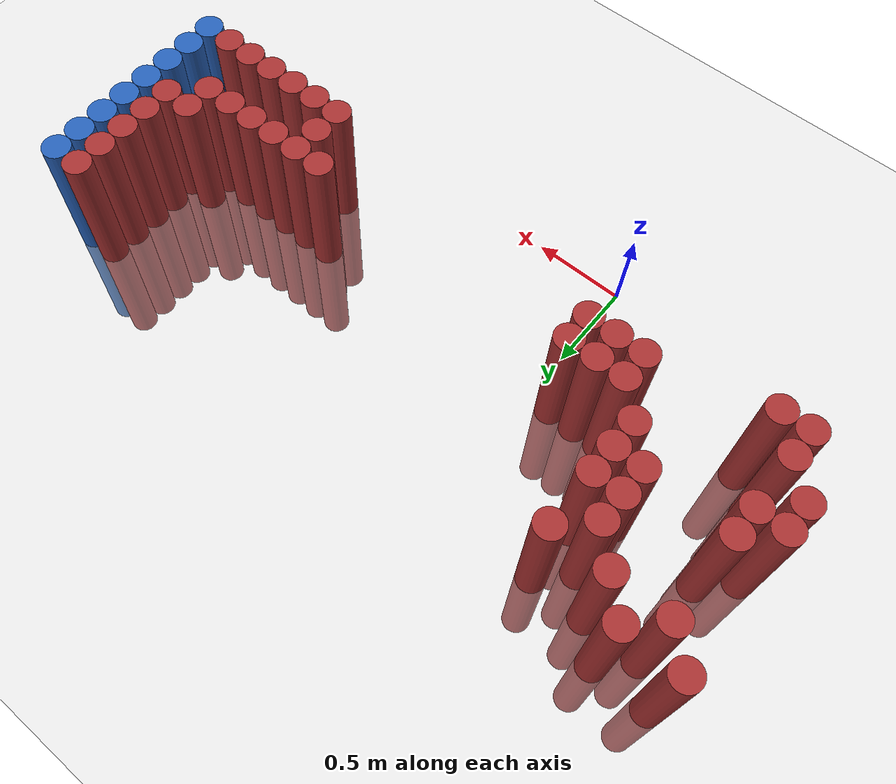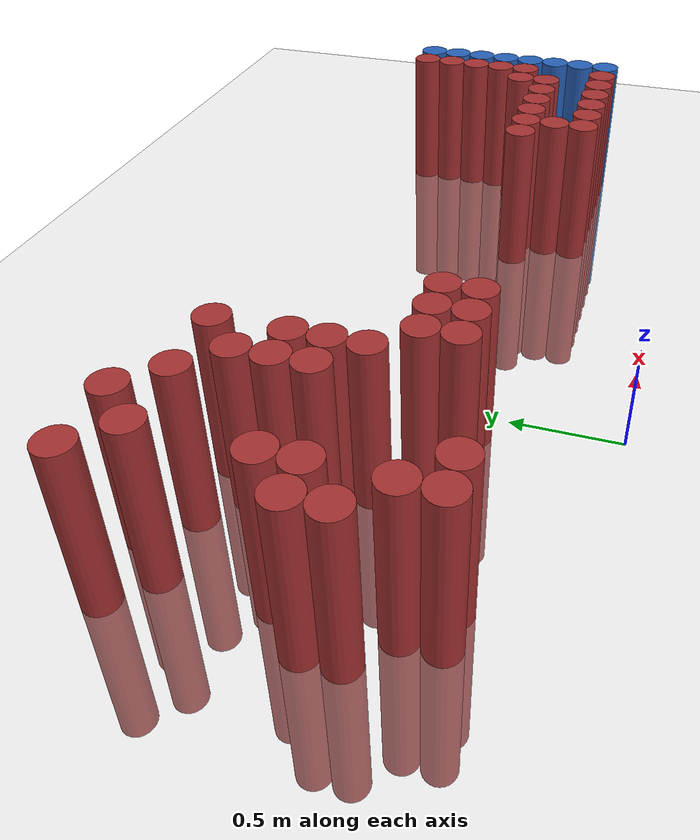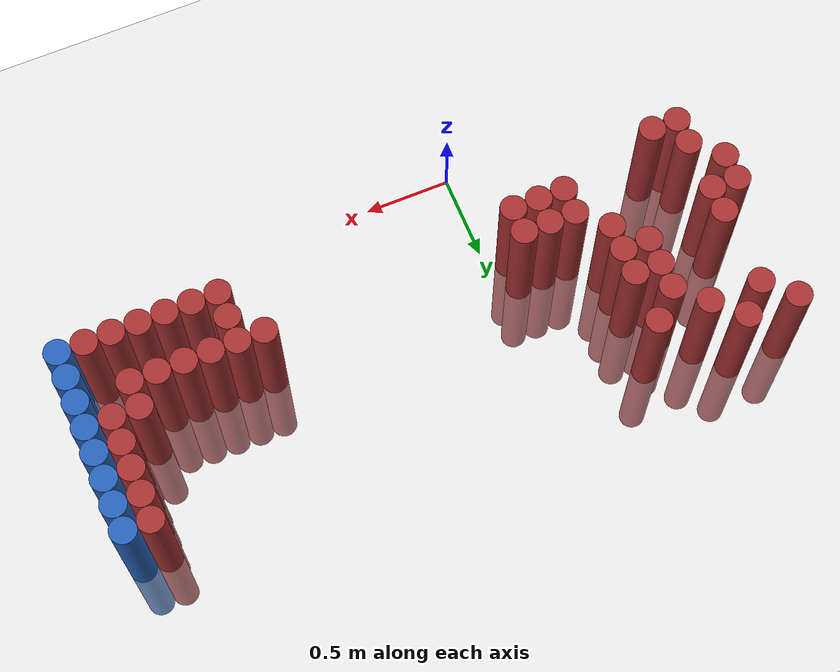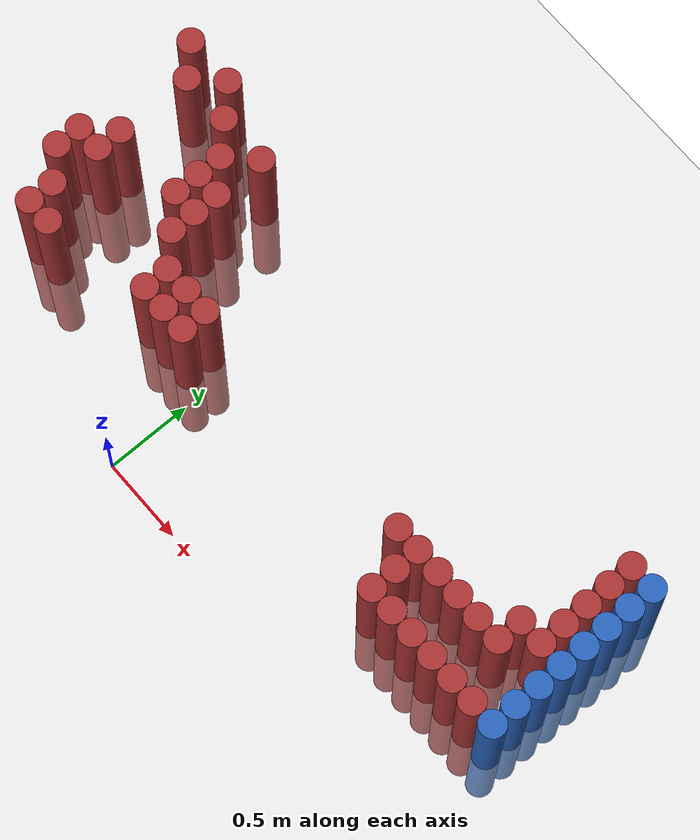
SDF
<sdf version="1.6">
 <world name="default">
  <model name="ground_plane">
   <static>1</static>
   <link name="link">
    <collision name="collision">
     <geometry><plane><normal>0 0 1</normal><size>100 100</size></plane></geometry>
     <surface><friction><ode><mu>100</mu><mu2>50</mu2></ode></friction></surface>
    </collision>
    <visual name="visual">
     <cast_shadows>0</cast_shadows>
     <geometry><plane><normal>0 0 1</normal><size>100 100</size></plane></geometry>
     <material>
      <script><uri>file://media/materials/scripts/gazebo.material</uri><name>Gazebo/Grey</name></script>
     </material>
    </visual>
   </link>
  </model>
  <model name="unit_cylinder_155">
   <static>1</static>
   <pose>-1.325000 0.775000 0.000000 0.000000 0.000000 0.000000</pose>
   <link name="link">
    <inertial>
     <mass>1</mass>
     <inertia><ixx>0.145833</ixx><ixy>0</ixy><ixz>0</ixz><iyy>0.145833</iyy><iyz>0</iyz><izz>0.125</izz></inertia>
    </inertial>
    <collision name="collision">
     <geometry><cylinder><radius>0.075000</radius><length>1.5</length></cylinder></geometry>
    </collision>
    <visual name="visual">
     <geometry><cylinder><radius>0.075000</radius><length>1.5</length></cylinder></geometry>
     <material>
      <ambient>0.648000 0.192000 0.192000 1</ambient>
      <diffuse>0.648000 0.192000 0.192000 1</diffuse>
     </material>
     <material>
      <script><name>Gazebo/Grey</name><uri>file://media/materials/scripts/gazebo.material</uri></script>
     </material>
    </visual>
   </link>
  </model>
  <model name="unit_cylinder_156">
   <static>1</static>
   <pose>-1.325000 0.925000 0.000000 0.000000 0.000000 0.000000</pose>
   <link name="link">
    <inertial>
     <mass>1</mass>
     <inertia><ixx>0.145833</ixx><ixy>0</ixy><ixz>0</ixz><iyy>0.145833</iyy><iyz>0</iyz><izz>0.125</izz></inertia>
    </inertial>
    <collision name="collision">
     <geometry><cylinder><radius>0.075000</radius><length>1.5</length></cylinder></geometry>
    </collision>
    <visual name="visual">
     <geometry><cylinder><radius>0.075000</radius><length>1.5</length></cylinder></geometry>
     <material>
      <ambient>0.648000 0.192000 0.192000 1</ambient>
      <diffuse>0.648000 0.192000 0.192000 1</diffuse>
     </material>
     <material>
      <script><name>Gazebo/Grey</name><uri>file://media/materials/scripts/gazebo.material</uri></script>
     </material>
    </visual>
   </link>
  </model>
  <model name="unit_cylinder_157">
   <static>1</static>
   <pose>-1.325000 1.675000 0.000000 0.000000 0.000000 0.000000</pose>
   <link name="link">
    <inertial>
     <mass>1</mass>
     <inertia><ixx>0.145833</ixx><ixy>0</ixy><ixz>0</ixz><iyy>0.145833</iyy><iyz>0</iyz><izz>0.125</izz></inertia>
    </inertial>
    <collision name="collision">
     <geometry><cylinder><radius>0.075000</radius><length>1.5</length></cylinder></geometry>
    </collision>
    <visual name="visual">
     <geometry><cylinder><radius>0.075000</radius><length>1.5</length></cylinder></geometry>
     <material>
      <ambient>0.648000 0.192000 0.192000 1</ambient>
      <diffuse>0.648000 0.192000 0.192000 1</diffuse>
     </material>
     <material>
      <script><name>Gazebo/Grey</name><uri>file://media/materials/scripts/gazebo.material</uri></script>
     </material>
    </visual>
   </link>
  </model>
  <model name="unit_cylinder_158">
   <static>1</static>
   <pose>-1.175000 0.475000 0.000000 0.000000 0.000000 0.000000</pose>
   <link name="link">
    <inertial>
     <mass>1</mass>
     <inertia><ixx>0.145833</ixx><ixy>0</ixy><ixz>0</ixz><iyy>0.145833</iyy><iyz>0</iyz><izz>0.125</izz></inertia>
    </inertial>
    <collision name="collision">
     <geometry><cylinder><radius>0.075000</radius><length>1.5</length></cylinder></geometry>
    </collision>
    <visual name="visual">
     <geometry><cylinder><radius>0.075000</radius><length>1.5</length></cylinder></geometry>
     <material>
      <ambient>0.648000 0.192000 0.192000 1</ambient>
      <diffuse>0.648000 0.192000 0.192000 1</diffuse>
     </material>
     <material>
      <script><name>Gazebo/Grey</name><uri>file://media/materials/scripts/gazebo.material</uri></script>
     </material>
    </visual>
   </link>
  </model>
  <model name="unit_cylinder_159">
   <static>1</static>
   <pose>-1.175000 0.625000 0.000000 0.000000 0.000000 0.000000</pose>
   <link name="link">
    <inertial>
     <mass>1</mass>
     <inertia><ixx>0.145833</ixx><ixy>0</ixy><ixz>0</ixz><iyy>0.145833</iyy><iyz>0</iyz><izz>0.125</izz></inertia>
    </inertial>
    <collision name="collision">
     <geometry><cylinder><radius>0.075000</radius><length>1.5</length></cylinder></geometry>
    </collision>
    <visual name="visual">
     <geometry><cylinder><radius>0.075000</radius><length>1.5</length></cylinder></geometry>
     <material>
      <ambient>0.648000 0.192000 0.192000 1</ambient>
      <diffuse>0.648000 0.192000 0.192000 1</diffuse>
     </material>
     <material>
      <script><name>Gazebo/Grey</name><uri>file://media/materials/scripts/gazebo.material</uri></script>
     </material>
    </visual>
   </link>
  </model>
  <model name="unit_cylinder_160">
   <static>1</static>
   <pose>-1.175000 0.925000 0.000000 0.000000 0.000000 0.000000</pose>
   <link name="link">
    <inertial>
     <mass>1</mass>
     <inertia><ixx>0.145833</ixx><ixy>0</ixy><ixz>0</ixz><iyy>0.145833</iyy><iyz>0</iyz><izz>0.125</izz></inertia>
    </inertial>
    <collision name="collision">
     <geometry><cylinder><radius>0.075000</radius><length>1.5</length></cylinder></geometry>
    </collision>
    <visual name="visual">
     <geometry><cylinder><radius>0.075000</radius><length>1.5</length></cylinder></geometry>
     <material>
      <ambient>0.648000 0.192000 0.192000 1</ambient>
      <diffuse>0.648000 0.192000 0.192000 1</diffuse>
     </material>
     <material>
      <script><name>Gazebo/Grey</name><uri>file://media/materials/scripts/gazebo.material</uri></script>
     </material>
    </visual>
   </link>
  </model>
  <model name="unit_cylinder_161">
   <static>1</static>
   <pose>-1.175000 1.075000 0.000000 0.000000 0.000000 0.000000</pose>
   <link name="link">
    <inertial>
     <mass>1</mass>
     <inertia><ixx>0.145833</ixx><ixy>0</ixy><ixz>0</ixz><iyy>0.145833</iyy><iyz>0</iyz><izz>0.125</izz></inertia>
    </inertial>
    <collision name="collision">
     <geometry><cylinder><radius>0.075000</radius><length>1.5</length></cylinder></geometry>
    </collision>
    <visual name="visual">
     <geometry><cylinder><radius>0.075000</radius><length>1.5</length></cylinder></geometry>
     <material>
      <ambient>0.648000 0.192000 0.192000 1</ambient>
      <diffuse>0.648000 0.192000 0.192000 1</diffuse>
     </material>
     <material>
      <script><name>Gazebo/Grey</name><uri>file://media/materials/scripts/gazebo.material</uri></script>
     </material>
    </visual>
   </link>
  </model>
  <model name="unit_cylinder_162">
   <static>1</static>
   <pose>-1.175000 1.525000 0.000000 0.000000 0.000000 0.000000</pose>
   <link name="link">
    <inertial>
     <mass>1</mass>
     <inertia><ixx>0.145833</ixx><ixy>0</ixy><ixz>0</ixz><iyy>0.145833</iyy><iyz>0</iyz><izz>0.125</izz></inertia>
    </inertial>
    <collision name="collision">
     <geometry><cylinder><radius>0.075000</radius><length>1.5</length></cylinder></geometry>
    </collision>
    <visual name="visual">
     <geometry><cylinder><radius>0.075000</radius><length>1.5</length></cylinder></geometry>
     <material>
      <ambient>0.648000 0.192000 0.192000 1</ambient>
      <diffuse>0.648000 0.192000 0.192000 1</diffuse>
     </material>
     <material>
      <script><name>Gazebo/Grey</name><uri>file://media/materials/scripts/gazebo.material</uri></script>
     </material>
    </visual>
   </link>
  </model>
  <model name="unit_cylinder_166">
   <static>1</static>
   <pose>-1.025000 0.475000 0.000000 0.000000 0.000000 0.000000</pose>
   <link name="link">
    <inertial>
     <mass>1</mass>
     <inertia><ixx>0.145833</ixx><ixy>0</ixy><ixz>0</ixz><iyy>0.145833</iyy><iyz>0</iyz><izz>0.125</izz></inertia>
    </inertial>
    <collision name="collision">
     <geometry><cylinder><radius>0.075000</radius><length>1.5</length></cylinder></geometry>
    </collision>
    <visual name="visual">
     <geometry><cylinder><radius>0.075000</radius><length>1.5</length></cylinder></geometry>
     <material>
      <ambient>0.648000 0.192000 0.192000 1</ambient>
      <diffuse>0.648000 0.192000 0.192000 1</diffuse>
     </material>
     <material>
      <script><name>Gazebo/Grey</name><uri>file://media/materials/scripts/gazebo.material</uri></script>
     </material>
    </visual>
   </link>
  </model>
  <model name="unit_cylinder_167">
   <static>1</static>
   <pose>-1.025000 1.675000 0.000000 0.000000 0.000000 0.000000</pose>
   <link name="link">
    <inertial>
     <mass>1</mass>
     <inertia><ixx>0.145833</ixx><ixy>0</ixy><ixz>0</ixz><iyy>0.145833</iyy><iyz>0</iyz><izz>0.125</izz></inertia>
    </inertial>
    <collision name="collision">
     <geometry><cylinder><radius>0.075000</radius><length>1.5</length></cylinder></geometry>
    </collision>
    <visual name="visual">
     <geometry><cylinder><radius>0.075000</radius><length>1.5</length></cylinder></geometry>
     <material>
      <ambient>0.648000 0.192000 0.192000 1</ambient>
      <diffuse>0.648000 0.192000 0.192000 1</diffuse>
     </material>
     <material>
      <script><name>Gazebo/Grey</name><uri>file://media/materials/scripts/gazebo.material</uri></script>
     </material>
    </visual>
   </link>
  </model>
  <model name="unit_cylinder_169">
   <static>1</static>
   <pose>-0.875000 1.525000 0.000000 0.000000 0.000000 0.000000</pose>
   <link name="link">
    <inertial>
     <mass>1</mass>
     <inertia><ixx>0.145833</ixx><ixy>0</ixy><ixz>0</ixz><iyy>0.145833</iyy><iyz>0</iyz><izz>0.125</izz></inertia>
    </inertial>
    <collision name="collision">
     <geometry><cylinder><radius>0.075000</radius><length>1.5</length></cylinder></geometry>
    </collision>
    <visual name="visual">
     <geometry><cylinder><radius>0.075000</radius><length>1.5</length></cylinder></geometry>
     <material>
      <ambient>0.648000 0.192000 0.192000 1</ambient>
      <diffuse>0.648000 0.192000 0.192000 1</diffuse>
     </material>
     <material>
      <script><name>Gazebo/Grey</name><uri>file://media/materials/scripts/gazebo.material</uri></script>
     </material>
    </visual>
   </link>
  </model>
  <model name="unit_cylinder_171">
   <static>1</static>
   <pose>-0.725000 1.075000 0.000000 0.000000 0.000000 0.000000</pose>
   <link name="link">
    <inertial>
     <mass>1</mass>
     <inertia><ixx>0.145833</ixx><ixy>0</ixy><ixz>0</ixz><iyy>0.145833</iyy><iyz>0</iyz><izz>0.125</izz></inertia>
    </inertial>
    <collision name="collision">
     <geometry><cylinder><radius>0.075000</radius><length>1.5</length></cylinder></geometry>
    </collision>
    <visual name="visual">
     <geometry><cylinder><radius>0.075000</radius><length>1.5</length></cylinder></geometry>
     <material>
      <ambient>0.648000 0.192000 0.192000 1</ambient>
      <diffuse>0.648000 0.192000 0.192000 1</diffuse>
     </material>
     <material>
      <script><name>Gazebo/Grey</name><uri>file://media/materials/scripts/gazebo.material</uri></script>
     </material>
    </visual>
   </link>
  </model>
  <model name="unit_cylinder_172">
   <static>1</static>
   <pose>-0.725000 1.225000 0.000000 0.000000 0.000000 0.000000</pose>
   <link name="link">
    <inertial>
     <mass>1</mass>
     <inertia><ixx>0.145833</ixx><ixy>0</ixy><ixz>0</ixz><iyy>0.145833</iyy><iyz>0</iyz><izz>0.125</izz></inertia>
    </inertial>
    <collision name="collision">
     <geometry><cylinder><radius>0.075000</radius><length>1.5</length></cylinder></geometry>
    </collision>
    <visual name="visual">
     <geometry><cylinder><radius>0.075000</radius><length>1.5</length></cylinder></geometry>
     <material>
      <ambient>0.648000 0.192000 0.192000 1</ambient>
      <diffuse>0.648000 0.192000 0.192000 1</diffuse>
     </material>
     <material>
      <script><name>Gazebo/Grey</name><uri>file://media/materials/scripts/gazebo.material</uri></script>
     </material>
    </visual>
   </link>
  </model>
  <model name="unit_cylinder_173">
   <static>1</static>
   <pose>-0.725000 1.375000 0.000000 0.000000 0.000000 0.000000</pose>
   <link name="link">
    <inertial>
     <mass>1</mass>
     <inertia><ixx>0.145833</ixx><ixy>0</ixy><ixz>0</ixz><iyy>0.145833</iyy><iyz>0</iyz><izz>0.125</izz></inertia>
    </inertial>
    <collision name="collision">
     <geometry><cylinder><radius>0.075000</radius><length>1.5</length></cylinder></geometry>
    </collision>
    <visual name="visual">
     <geometry><cylinder><radius>0.075000</radius><length>1.5</length></cylinder></geometry>
     <material>
      <ambient>0.648000 0.192000 0.192000 1</ambient>
      <diffuse>0.648000 0.192000 0.192000 1</diffuse>
     </material>
     <material>
      <script><name>Gazebo/Grey</name><uri>file://media/materials/scripts/gazebo.material</uri></script>
     </material>
    </visual>
   </link>
  </model>
  <model name="unit_cylinder_176">
   <static>1</static>
   <pose>-0.575000 0.925000 0.000000 0.000000 0.000000 0.000000</pose>
   <link name="link">
    <inertial>
     <mass>1</mass>
     <inertia><ixx>0.145833</ixx><ixy>0</ixy><ixz>0</ixz><iyy>0.145833</iyy><iyz>0</iyz><izz>0.125</izz></inertia>
    </inertial>
    <collision name="collision">
     <geometry><cylinder><radius>0.075000</radius><length>1.5</length></cylinder></geometry>
    </collision>
    <visual name="visual">
     <geometry><cylinder><radius>0.075000</radius><length>1.5</length></cylinder></geometry>
     <material>
      <ambient>0.648000 0.192000 0.192000 1</ambient>
      <diffuse>0.648000 0.192000 0.192000 1</diffuse>
     </material>
     <material>
      <script><name>Gazebo/Grey</name><uri>file://media/materials/scripts/gazebo.material</uri></script>
     </material>
    </visual>
   </link>
  </model>
  <model name="unit_cylinder_177">
   <static>1</static>
   <pose>-0.575000 1.075000 0.000000 0.000000 0.000000 0.000000</pose>
   <link name="link">
    <inertial>
     <mass>1</mass>
     <inertia><ixx>0.145833</ixx><ixy>0</ixy><ixz>0</ixz><iyy>0.145833</iyy><iyz>0</iyz><izz>0.125</izz></inertia>
    </inertial>
    <collision name="collision">
     <geometry><cylinder><radius>0.075000</radius><length>1.5</length></cylinder></geometry>
    </collision>
    <visual name="visual">
     <geometry><cylinder><radius>0.075000</radius><length>1.5</length></cylinder></geometry>
     <material>
      <ambient>0.648000 0.192000 0.192000 1</ambient>
      <diffuse>0.648000 0.192000 0.192000 1</diffuse>
     </material>
     <material>
      <script><name>Gazebo/Grey</name><uri>file://media/materials/scripts/gazebo.material</uri></script>
     </material>
    </visual>
   </link>
  </model>
  <model name="unit_cylinder_178">
   <static>1</static>
   <pose>-0.575000 1.225000 0.000000 0.000000 0.000000 0.000000</pose>
   <link name="link">
    <inertial>
     <mass>1</mass>
     <inertia><ixx>0.145833</ixx><ixy>0</ixy><ixz>0</ixz><iyy>0.145833</iyy><iyz>0</iyz><izz>0.125</izz></inertia>
    </inertial>
    <collision name="collision">
     <geometry><cylinder><radius>0.075000</radius><length>1.5</length></cylinder></geometry>
    </collision>
    <visual name="visual">
     <geometry><cylinder><radius>0.075000</radius><length>1.5</length></cylinder></geometry>
     <material>
      <ambient>0.648000 0.192000 0.192000 1</ambient>
      <diffuse>0.648000 0.192000 0.192000 1</diffuse>
     </material>
     <material>
      <script><name>Gazebo/Grey</name><uri>file://media/materials/scripts/gazebo.material</uri></script>
     </material>
    </visual>
   </link>
  </model>
  <model name="unit_cylinder_179">
   <static>1</static>
   <pose>-0.575000 1.525000 0.000000 0.000000 0.000000 0.000000</pose>
   <link name="link">
    <inertial>
     <mass>1</mass>
     <inertia><ixx>0.145833</ixx><ixy>0</ixy><ixz>0</ixz><iyy>0.145833</iyy><iyz>0</iyz><izz>0.125</izz></inertia>
    </inertial>
    <collision name="collision">
     <geometry><cylinder><radius>0.075000</radius><length>1.5</length></cylinder></geometry>
    </collision>
    <visual name="visual">
     <geometry><cylinder><radius>0.075000</radius><length>1.5</length></cylinder></geometry>
     <material>
      <ambient>0.648000 0.192000 0.192000 1</ambient>
      <diffuse>0.648000 0.192000 0.192000 1</diffuse>
     </material>
     <material>
      <script><name>Gazebo/Grey</name><uri>file://media/materials/scripts/gazebo.material</uri></script>
     </material>
    </visual>
   </link>
  </model>
  <model name="unit_cylinder_181">
   <static>1</static>
   <pose>-0.425000 0.625000 0.000000 0.000000 0.000000 0.000000</pose>
   <link name="link">
    <inertial>
     <mass>1</mass>
     <inertia><ixx>0.145833</ixx><ixy>0</ixy><ixz>0</ixz><iyy>0.145833</iyy><iyz>0</iyz><izz>0.125</izz></inertia>
    </inertial>
    <collision name="collision">
     <geometry><cylinder><radius>0.075000</radius><length>1.5</length></cylinder></geometry>
    </collision>
    <visual name="visual">
     <geometry><cylinder><radius>0.075000</radius><length>1.5</length></cylinder></geometry>
     <material>
      <ambient>0.648000 0.192000 0.192000 1</ambient>
      <diffuse>0.648000 0.192000 0.192000 1</diffuse>
     </material>
     <material>
      <script><name>Gazebo/Grey</name><uri>file://media/materials/scripts/gazebo.material</uri></script>
     </material>
    </visual>
   </link>
  </model>
  <model name="unit_cylinder_182">
   <static>1</static>
   <pose>-0.425000 0.775000 0.000000 0.000000 0.000000 0.000000</pose>
   <link name="link">
    <inertial>
     <mass>1</mass>
     <inertia><ixx>0.145833</ixx><ixy>0</ixy><ixz>0</ixz><iyy>0.145833</iyy><iyz>0</iyz><izz>0.125</izz></inertia>
    </inertial>
    <collision name="collision">
     <geometry><cylinder><radius>0.075000</radius><length>1.5</length></cylinder></geometry>
    </collision>
    <visual name="visual">
     <geometry><cylinder><radius>0.075000</radius><length>1.5</length></cylinder></geometry>
     <material>
      <ambient>0.648000 0.192000 0.192000 1</ambient>
      <diffuse>0.648000 0.192000 0.192000 1</diffuse>
     </material>
     <material>
      <script><name>Gazebo/Grey</name><uri>file://media/materials/scripts/gazebo.material</uri></script>
     </material>
    </visual>
   </link>
  </model>
  <model name="unit_cylinder_184">
   <static>1</static>
   <pose>-0.275000 0.625000 0.000000 0.000000 0.000000 0.000000</pose>
   <link name="link">
    <inertial>
     <mass>1</mass>
     <inertia><ixx>0.145833</ixx><ixy>0</ixy><ixz>0</ixz><iyy>0.145833</iyy><iyz>0</iyz><izz>0.125</izz></inertia>
    </inertial>
    <collision name="collision">
     <geometry><cylinder><radius>0.075000</radius><length>1.5</length></cylinder></geometry>
    </collision>
    <visual name="visual">
     <geometry><cylinder><radius>0.075000</radius><length>1.5</length></cylinder></geometry>
     <material>
      <ambient>0.648000 0.192000 0.192000 1</ambient>
      <diffuse>0.648000 0.192000 0.192000 1</diffuse>
     </material>
     <material>
      <script><name>Gazebo/Grey</name><uri>file://media/materials/scripts/gazebo.material</uri></script>
     </material>
    </visual>
   </link>
  </model>
  <model name="unit_cylinder_185">
   <static>1</static>
   <pose>-0.275000 0.775000 0.000000 0.000000 0.000000 0.000000</pose>
   <link name="link">
    <inertial>
     <mass>1</mass>
     <inertia><ixx>0.145833</ixx><ixy>0</ixy><ixz>0</ixz><iyy>0.145833</iyy><iyz>0</iyz><izz>0.125</izz></inertia>
    </inertial>
    <collision name="collision">
     <geometry><cylinder><radius>0.075000</radius><length>1.5</length></cylinder></geometry>
    </collision>
    <visual name="visual">
     <geometry><cylinder><radius>0.075000</radius><length>1.5</length></cylinder></geometry>
     <material>
      <ambient>0.648000 0.192000 0.192000 1</ambient>
      <diffuse>0.648000 0.192000 0.192000 1</diffuse>
     </material>
     <material>
      <script><name>Gazebo/Grey</name><uri>file://media/materials/scripts/gazebo.material</uri></script>
     </material>
    </visual>
   </link>
  </model>
  <model name="unit_cylinder_186">
   <static>1</static>
   <pose>-0.125000 0.625000 0.000000 0.000000 0.000000 0.000000</pose>
   <link name="link">
    <inertial>
     <mass>1</mass>
     <inertia><ixx>0.145833</ixx><ixy>0</ixy><ixz>0</ixz><iyy>0.145833</iyy><iyz>0</iyz><izz>0.125</izz></inertia>
    </inertial>
    <collision name="collision">
     <geometry><cylinder><radius>0.075000</radius><length>1.5</length></cylinder></geometry>
    </collision>
    <visual name="visual">
     <geometry><cylinder><radius>0.075000</radius><length>1.5</length></cylinder></geometry>
     <material>
      <ambient>0.648000 0.192000 0.192000 1</ambient>
      <diffuse>0.648000 0.192000 0.192000 1</diffuse>
     </material>
     <material>
      <script><name>Gazebo/Grey</name><uri>file://media/materials/scripts/gazebo.material</uri></script>
     </material>
    </visual>
   </link>
  </model>
  <model name="unit_cylinder_187">
   <static>1</static>
   <pose>-0.125000 0.775000 0.000000 0.000000 0.000000 0.000000</pose>
   <link name="link">
    <inertial>
     <mass>1</mass>
     <inertia><ixx>0.145833</ixx><ixy>0</ixy><ixz>0</ixz><iyy>0.145833</iyy><iyz>0</iyz><izz>0.125</izz></inertia>
    </inertial>
    <collision name="collision">
     <geometry><cylinder><radius>0.075000</radius><length>1.5</length></cylinder></geometry>
    </collision>
    <visual name="visual">
     <geometry><cylinder><radius>0.075000</radius><length>1.5</length></cylinder></geometry>
     <material>
      <ambient>0.648000 0.192000 0.192000 1</ambient>
      <diffuse>0.648000 0.192000 0.192000 1</diffuse>
     </material>
     <material>
      <script><name>Gazebo/Grey</name><uri>file://media/materials/scripts/gazebo.material</uri></script>
     </material>
    </visual>
   </link>
  </model>
  <model name="unit_cylinder_188">
   <static>1</static>
   <pose>1.375000 0.775000 0.000000 0.000000 0.000000 0.000000</pose>
   <link name="link">
    <inertial>
     <mass>1</mass>
     <inertia><ixx>0.145833</ixx><ixy>0</ixy><ixz>0</ixz><iyy>0.145833</iyy><iyz>0</iyz><izz>0.125</izz></inertia>
    </inertial>
    <collision name="collision">
     <geometry><cylinder><radius>0.075000</radius><length>1.5</length></cylinder></geometry>
    </collision>
    <visual name="visual">
     <geometry><cylinder><radius>0.075000</radius><length>1.5</length></cylinder></geometry>
     <material>
      <ambient>0.648000 0.192000 0.192000 1</ambient>
      <diffuse>0.648000 0.192000 0.192000 1</diffuse>
     </material>
     <material>
      <script><name>Gazebo/Grey</name><uri>file://media/materials/scripts/gazebo.material</uri></script>
     </material>
    </visual>
   </link>
  </model>
  <model name="unit_cylinder_189">
   <static>1</static>
   <pose>1.525000 0.475000 0.000000 0.000000 0.000000 0.000000</pose>
   <link name="link">
    <inertial>
     <mass>1</mass>
     <inertia><ixx>0.145833</ixx><ixy>0</ixy><ixz>0</ixz><iyy>0.145833</iyy><iyz>0</iyz><izz>0.125</izz></inertia>
    </inertial>
    <collision name="collision">
     <geometry><cylinder><radius>0.075000</radius><length>1.5</length></cylinder></geometry>
    </collision>
    <visual name="visual">
     <geometry><cylinder><radius>0.075000</radius><length>1.5</length></cylinder></geometry>
     <material>
      <ambient>0.648000 0.192000 0.192000 1</ambient>
      <diffuse>0.648000 0.192000 0.192000 1</diffuse>
     </material>
     <material>
      <script><name>Gazebo/Grey</name><uri>file://media/materials/scripts/gazebo.material</uri></script>
     </material>
    </visual>
   </link>
  </model>
  <model name="unit_cylinder_190">
   <static>1</static>
   <pose>1.525000 0.625000 0.000000 0.000000 0.000000 0.000000</pose>
   <link name="link">
    <inertial>
     <mass>1</mass>
     <inertia><ixx>0.145833</ixx><ixy>0</ixy><ixz>0</ixz><iyy>0.145833</iyy><iyz>0</iyz><izz>0.125</izz></inertia>
    </inertial>
    <collision name="collision">
     <geometry><cylinder><radius>0.075000</radius><length>1.5</length></cylinder></geometry>
    </collision>
    <visual name="visual">
     <geometry><cylinder><radius>0.075000</radius><length>1.5</length></cylinder></geometry>
     <material>
      <ambient>0.648000 0.192000 0.192000 1</ambient>
      <diffuse>0.648000 0.192000 0.192000 1</diffuse>
     </material>
     <material>
      <script><name>Gazebo/Grey</name><uri>file://media/materials/scripts/gazebo.material</uri></script>
     </material>
    </visual>
   </link>
  </model>
  <model name="unit_cylinder_191">
   <static>1</static>
   <pose>1.525000 0.775000 0.000000 0.000000 0.000000 0.000000</pose>
   <link name="link">
    <inertial>
     <mass>1</mass>
     <inertia><ixx>0.145833</ixx><ixy>0</ixy><ixz>0</ixz><iyy>0.145833</iyy><iyz>0</iyz><izz>0.125</izz></inertia>
    </inertial>
    <collision name="collision">
     <geometry><cylinder><radius>0.075000</radius><length>1.5</length></cylinder></geometry>
    </collision>
    <visual name="visual">
     <geometry><cylinder><radius>0.075000</radius><length>1.5</length></cylinder></geometry>
     <material>
      <ambient>0.648000 0.192000 0.192000 1</ambient>
      <diffuse>0.648000 0.192000 0.192000 1</diffuse>
     </material>
     <material>
      <script><name>Gazebo/Grey</name><uri>file://media/materials/scripts/gazebo.material</uri></script>
     </material>
    </visual>
   </link>
  </model>
  <model name="unit_cylinder_192">
   <static>1</static>
   <pose>1.675000 0.475000 0.000000 0.000000 0.000000 0.000000</pose>
   <link name="link">
    <inertial>
     <mass>1</mass>
     <inertia><ixx>0.145833</ixx><ixy>0</ixy><ixz>0</ixz><iyy>0.145833</iyy><iyz>0</iyz><izz>0.125</izz></inertia>
    </inertial>
    <collision name="collision">
     <geometry><cylinder><radius>0.075000</radius><length>1.5</length></cylinder></geometry>
    </collision>
    <visual name="visual">
     <geometry><cylinder><radius>0.075000</radius><length>1.5</length></cylinder></geometry>
     <material>
      <ambient>0.648000 0.192000 0.192000 1</ambient>
      <diffuse>0.648000 0.192000 0.192000 1</diffuse>
     </material>
     <material>
      <script><name>Gazebo/Grey</name><uri>file://media/materials/scripts/gazebo.material</uri></script>
     </material>
    </visual>
   </link>
  </model>
  <model name="unit_cylinder_193">
   <static>1</static>
   <pose>1.675000 0.775000 0.000000 0.000000 0.000000 0.000000</pose>
   <link name="link">
    <inertial>
     <mass>1</mass>
     <inertia><ixx>0.145833</ixx><ixy>0</ixy><ixz>0</ixz><iyy>0.145833</iyy><iyz>0</iyz><izz>0.125</izz></inertia>
    </inertial>
    <collision name="collision">
     <geometry><cylinder><radius>0.075000</radius><length>1.5</length></cylinder></geometry>
    </collision>
    <visual name="visual">
     <geometry><cylinder><radius>0.075000</radius><length>1.5</length></cylinder></geometry>
     <material>
      <ambient>0.648000 0.192000 0.192000 1</ambient>
      <diffuse>0.648000 0.192000 0.192000 1</diffuse>
     </material>
     <material>
      <script><name>Gazebo/Grey</name><uri>file://media/materials/scripts/gazebo.material</uri></script>
     </material>
    </visual>
   </link>
  </model>
  <model name="unit_cylinder_195">
   <static>1</static>
   <pose>1.825000 0.475000 0.000000 0.000000 0.000000 0.000000</pose>
   <link name="link">
    <inertial>
     <mass>1</mass>
     <inertia><ixx>0.145833</ixx><ixy>0</ixy><ixz>0</ixz><iyy>0.145833</iyy><iyz>0</iyz><izz>0.125</izz></inertia>
    </inertial>
    <collision name="collision">
     <geometry><cylinder><radius>0.075000</radius><length>1.5</length></cylinder></geometry>
    </collision>
    <visual name="visual">
     <geometry><cylinder><radius>0.075000</radius><length>1.5</length></cylinder></geometry>
     <material>
      <ambient>0.648000 0.192000 0.192000 1</ambient>
      <diffuse>0.648000 0.192000 0.192000 1</diffuse>
     </material>
     <material>
      <script><name>Gazebo/Grey</name><uri>file://media/materials/scripts/gazebo.material</uri></script>
     </material>
    </visual>
   </link>
  </model>
  <model name="unit_cylinder_196">
   <static>1</static>
   <pose>1.825000 0.775000 0.000000 0.000000 0.000000 0.000000</pose>
   <link name="link">
    <inertial>
     <mass>1</mass>
     <inertia><ixx>0.145833</ixx><ixy>0</ixy><ixz>0</ixz><iyy>0.145833</iyy><iyz>0</iyz><izz>0.125</izz></inertia>
    </inertial>
    <collision name="collision">
     <geometry><cylinder><radius>0.075000</radius><length>1.5</length></cylinder></geometry>
    </collision>
    <visual name="visual">
     <geometry><cylinder><radius>0.075000</radius><length>1.5</length></cylinder></geometry>
     <material>
      <ambient>0.648000 0.192000 0.192000 1</ambient>
      <diffuse>0.648000 0.192000 0.192000 1</diffuse>
     </material>
     <material>
      <script><name>Gazebo/Grey</name><uri>file://media/materials/scripts/gazebo.material</uri></script>
     </material>
    </visual>
   </link>
  </model>
  <model name="unit_cylinder_199">
   <static>1</static>
   <pose>1.975000 0.475000 0.000000 0.000000 0.000000 0.000000</pose>
   <link name="link">
    <inertial>
     <mass>1</mass>
     <inertia><ixx>0.145833</ixx><ixy>0</ixy><ixz>0</ixz><iyy>0.145833</iyy><iyz>0</iyz><izz>0.125</izz></inertia>
    </inertial>
    <collision name="collision">
     <geometry><cylinder><radius>0.075000</radius><length>1.5</length></cylinder></geometry>
    </collision>
    <visual name="visual">
     <geometry><cylinder><radius>0.075000</radius><length>1.5</length></cylinder></geometry>
     <material>
      <ambient>0.648000 0.192000 0.192000 1</ambient>
      <diffuse>0.648000 0.192000 0.192000 1</diffuse>
     </material>
     <material>
      <script><name>Gazebo/Grey</name><uri>file://media/materials/scripts/gazebo.material</uri></script>
     </material>
    </visual>
   </link>
  </model>
  <model name="unit_cylinder_200">
   <static>1</static>
   <pose>1.975000 0.775000 0.000000 0.000000 0.000000 0.000000</pose>
   <link name="link">
    <inertial>
     <mass>1</mass>
     <inertia><ixx>0.145833</ixx><ixy>0</ixy><ixz>0</ixz><iyy>0.145833</iyy><iyz>0</iyz><izz>0.125</izz></inertia>
    </inertial>
    <collision name="collision">
     <geometry><cylinder><radius>0.075000</radius><length>1.5</length></cylinder></geometry>
    </collision>
    <visual name="visual">
     <geometry><cylinder><radius>0.075000</radius><length>1.5</length></cylinder></geometry>
     <material>
      <ambient>0.648000 0.192000 0.192000 1</ambient>
      <diffuse>0.648000 0.192000 0.192000 1</diffuse>
     </material>
     <material>
      <script><name>Gazebo/Grey</name><uri>file://media/materials/scripts/gazebo.material</uri></script>
     </material>
    </visual>
   </link>
  </model>
  <model name="unit_cylinder_202">
   <static>1</static>
   <pose>2.125000 0.475000 0.000000 0.000000 0.000000 0.000000</pose>
   <link name="link">
    <inertial>
     <mass>1</mass>
     <inertia><ixx>0.145833</ixx><ixy>0</ixy><ixz>0</ixz><iyy>0.145833</iyy><iyz>0</iyz><izz>0.125</izz></inertia>
    </inertial>
    <collision name="collision">
     <geometry><cylinder><radius>0.075000</radius><length>1.5</length></cylinder></geometry>
    </collision>
    <visual name="visual">
     <geometry><cylinder><radius>0.075000</radius><length>1.5</length></cylinder></geometry>
     <material>
      <ambient>0.648000 0.192000 0.192000 1</ambient>
      <diffuse>0.648000 0.192000 0.192000 1</diffuse>
     </material>
     <material>
      <script><name>Gazebo/Grey</name><uri>file://media/materials/scripts/gazebo.material</uri></script>
     </material>
    </visual>
   </link>
  </model>
  <model name="unit_cylinder_203">
   <static>1</static>
   <pose>2.125000 0.775000 0.000000 0.000000 0.000000 0.000000</pose>
   <link name="link">
    <inertial>
     <mass>1</mass>
     <inertia><ixx>0.145833</ixx><ixy>0</ixy><ixz>0</ixz><iyy>0.145833</iyy><iyz>0</iyz><izz>0.125</izz></inertia>
    </inertial>
    <collision name="collision">
     <geometry><cylinder><radius>0.075000</radius><length>1.5</length></cylinder></geometry>
    </collision>
    <visual name="visual">
     <geometry><cylinder><radius>0.075000</radius><length>1.5</length></cylinder></geometry>
     <material>
      <ambient>0.648000 0.192000 0.192000 1</ambient>
      <diffuse>0.648000 0.192000 0.192000 1</diffuse>
     </material>
     <material>
      <script><name>Gazebo/Grey</name><uri>file://media/materials/scripts/gazebo.material</uri></script>
     </material>
    </visual>
   </link>
  </model>
  <model name="unit_cylinder_204">
   <static>1</static>
   <pose>2.125000 0.925000 0.000000 0.000000 0.000000 0.000000</pose>
   <link name="link">
    <inertial>
     <mass>1</mass>
     <inertia><ixx>0.145833</ixx><ixy>0</ixy><ixz>0</ixz><iyy>0.145833</iyy><iyz>0</iyz><izz>0.125</izz></inertia>
    </inertial>
    <collision name="collision">
     <geometry><cylinder><radius>0.075000</radius><length>1.5</length></cylinder></geometry>
    </collision>
    <visual name="visual">
     <geometry><cylinder><radius>0.075000</radius><length>1.5</length></cylinder></geometry>
     <material>
      <ambient>0.648000 0.192000 0.192000 1</ambient>
      <diffuse>0.648000 0.192000 0.192000 1</diffuse>
     </material>
     <material>
      <script><name>Gazebo/Grey</name><uri>file://media/materials/scripts/gazebo.material</uri></script>
     </material>
    </visual>
   </link>
  </model>
  <model name="unit_cylinder_209">
   <static>1</static>
   <pose>2.275000 0.475000 0.000000 0.000000 0.000000 0.000000</pose>
   <link name="link">
    <inertial>
     <mass>1</mass>
     <inertia><ixx>0.145833</ixx><ixy>0</ixy><ixz>0</ixz><iyy>0.145833</iyy><iyz>0</iyz><izz>0.125</izz></inertia>
    </inertial>
    <collision name="collision">
     <geometry><cylinder><radius>0.075000</radius><length>1.5</length></cylinder></geometry>
    </collision>
    <visual name="visual">
     <geometry><cylinder><radius>0.075000</radius><length>1.5</length></cylinder></geometry>
     <material>
      <ambient>0.648000 0.192000 0.192000 1</ambient>
      <diffuse>0.648000 0.192000 0.192000 1</diffuse>
     </material>
     <material>
      <script><name>Gazebo/Grey</name><uri>file://media/materials/scripts/gazebo.material</uri></script>
     </material>
    </visual>
   </link>
  </model>
  <model name="unit_cylinder_210">
   <static>1</static>
   <pose>2.275000 0.925000 0.000000 0.000000 0.000000 0.000000</pose>
   <link name="link">
    <inertial>
     <mass>1</mass>
     <inertia><ixx>0.145833</ixx><ixy>0</ixy><ixz>0</ixz><iyy>0.145833</iyy><iyz>0</iyz><izz>0.125</izz></inertia>
    </inertial>
    <collision name="collision">
     <geometry><cylinder><radius>0.075000</radius><length>1.5</length></cylinder></geometry>
    </collision>
    <visual name="visual">
     <geometry><cylinder><radius>0.075000</radius><length>1.5</length></cylinder></geometry>
     <material>
      <ambient>0.648000 0.192000 0.192000 1</ambient>
      <diffuse>0.648000 0.192000 0.192000 1</diffuse>
     </material>
     <material>
      <script><name>Gazebo/Grey</name><uri>file://media/materials/scripts/gazebo.material</uri></script>
     </material>
    </visual>
   </link>
  </model>
  <model name="unit_cylinder_211">
   <static>1</static>
   <pose>2.275000 1.075000 0.000000 0.000000 0.000000 0.000000</pose>
   <link name="link">
    <inertial>
     <mass>1</mass>
     <inertia><ixx>0.145833</ixx><ixy>0</ixy><ixz>0</ixz><iyy>0.145833</iyy><iyz>0</iyz><izz>0.125</izz></inertia>
    </inertial>
    <collision name="collision">
     <geometry><cylinder><radius>0.075000</radius><length>1.5</length></cylinder></geometry>
    </collision>
    <visual name="visual">
     <geometry><cylinder><radius>0.075000</radius><length>1.5</length></cylinder></geometry>
     <material>
      <ambient>0.648000 0.192000 0.192000 1</ambient>
      <diffuse>0.648000 0.192000 0.192000 1</diffuse>
     </material>
     <material>
      <script><name>Gazebo/Grey</name><uri>file://media/materials/scripts/gazebo.material</uri></script>
     </material>
    </visual>
   </link>
  </model>
  <model name="unit_cylinder_212">
   <static>1</static>
   <pose>2.275000 1.225000 0.000000 0.000000 0.000000 0.000000</pose>
   <link name="link">
    <inertial>
     <mass>1</mass>
     <inertia><ixx>0.145833</ixx><ixy>0</ixy><ixz>0</ixz><iyy>0.145833</iyy><iyz>0</iyz><izz>0.125</izz></inertia>
    </inertial>
    <collision name="collision">
     <geometry><cylinder><radius>0.075000</radius><length>1.5</length></cylinder></geometry>
    </collision>
    <visual name="visual">
     <geometry><cylinder><radius>0.075000</radius><length>1.5</length></cylinder></geometry>
     <material>
      <ambient>0.648000 0.192000 0.192000 1</ambient>
      <diffuse>0.648000 0.192000 0.192000 1</diffuse>
     </material>
     <material>
      <script><name>Gazebo/Grey</name><uri>file://media/materials/scripts/gazebo.material</uri></script>
     </material>
    </visual>
   </link>
  </model>
  <model name="unit_cylinder_213">
   <static>1</static>
   <pose>2.275000 1.375000 0.000000 0.000000 0.000000 0.000000</pose>
   <link name="link">
    <inertial>
     <mass>1</mass>
     <inertia><ixx>0.145833</ixx><ixy>0</ixy><ixz>0</ixz><iyy>0.145833</iyy><iyz>0</iyz><izz>0.125</izz></inertia>
    </inertial>
    <collision name="collision">
     <geometry><cylinder><radius>0.075000</radius><length>1.5</length></cylinder></geometry>
    </collision>
    <visual name="visual">
     <geometry><cylinder><radius>0.075000</radius><length>1.5</length></cylinder></geometry>
     <material>
      <ambient>0.648000 0.192000 0.192000 1</ambient>
      <diffuse>0.648000 0.192000 0.192000 1</diffuse>
     </material>
     <material>
      <script><name>Gazebo/Grey</name><uri>file://media/materials/scripts/gazebo.material</uri></script>
     </material>
    </visual>
   </link>
  </model>
  <model name="unit_cylinder_214">
   <static>1</static>
   <pose>2.275000 1.525000 0.000000 0.000000 0.000000 0.000000</pose>
   <link name="link">
    <inertial>
     <mass>1</mass>
     <inertia><ixx>0.145833</ixx><ixy>0</ixy><ixz>0</ixz><iyy>0.145833</iyy><iyz>0</iyz><izz>0.125</izz></inertia>
    </inertial>
    <collision name="collision">
     <geometry><cylinder><radius>0.075000</radius><length>1.5</length></cylinder></geometry>
    </collision>
    <visual name="visual">
     <geometry><cylinder><radius>0.075000</radius><length>1.5</length></cylinder></geometry>
     <material>
      <ambient>0.648000 0.192000 0.192000 1</ambient>
      <diffuse>0.648000 0.192000 0.192000 1</diffuse>
     </material>
     <material>
      <script><name>Gazebo/Grey</name><uri>file://media/materials/scripts/gazebo.material</uri></script>
     </material>
    </visual>
   </link>
  </model>
  <model name="unit_cylinder_230">
   <static>1</static>
   <pose>2.425000 0.475000 0.000000 0.000000 0.000000 0.000000</pose>
   <link name="link">
    <inertial>
     <mass>1</mass>
     <inertia><ixx>0.145833</ixx><ixy>0</ixy><ixz>0</ixz><iyy>0.145833</iyy><iyz>0</iyz><izz>0.125</izz></inertia>
    </inertial>
    <collision name="collision">
     <geometry><cylinder><radius>0.075000</radius><length>1.5</length></cylinder></geometry>
    </collision>
    <visual name="visual">
     <geometry><cylinder><radius>0.075000</radius><length>1.5</length></cylinder></geometry>
     <material>
      <ambient>0.152000 0.379000 0.720000 1</ambient>
      <diffuse>0.152000 0.379000 0.720000 1</diffuse>
     </material>
     <material>
      <script><name>Gazebo/Grey</name><uri>file://media/materials/scripts/gazebo.material</uri></script>
     </material>
    </visual>
   </link>
  </model>
  <model name="unit_cylinder_231">
   <static>1</static>
   <pose>2.425000 0.625000 0.000000 0.000000 0.000000 0.000000</pose>
   <link name="link">
    <inertial>
     <mass>1</mass>
     <inertia><ixx>0.145833</ixx><ixy>0</ixy><ixz>0</ixz><iyy>0.145833</iyy><iyz>0</iyz><izz>0.125</izz></inertia>
    </inertial>
    <collision name="collision">
     <geometry><cylinder><radius>0.075000</radius><length>1.5</length></cylinder></geometry>
    </collision>
    <visual name="visual">
     <geometry><cylinder><radius>0.075000</radius><length>1.5</length></cylinder></geometry>
     <material>
      <ambient>0.152000 0.379000 0.720000 1</ambient>
      <diffuse>0.152000 0.379000 0.720000 1</diffuse>
     </material>
     <material>
      <script><name>Gazebo/Grey</name><uri>file://media/materials/scripts/gazebo.material</uri></script>
     </material>
    </visual>
   </link>
  </model>
  <model name="unit_cylinder_232">
   <static>1</static>
   <pose>2.425000 0.775000 0.000000 0.000000 0.000000 0.000000</pose>
   <link name="link">
    <inertial>
     <mass>1</mass>
     <inertia><ixx>0.145833</ixx><ixy>0</ixy><ixz>0</ixz><iyy>0.145833</iyy><iyz>0</iyz><izz>0.125</izz></inertia>
    </inertial>
    <collision name="collision">
     <geometry><cylinder><radius>0.075000</radius><length>1.5</length></cylinder></geometry>
    </collision>
    <visual name="visual">
     <geometry><cylinder><radius>0.075000</radius><length>1.5</length></cylinder></geometry>
     <material>
      <ambient>0.152000 0.379000 0.720000 1</ambient>
      <diffuse>0.152000 0.379000 0.720000 1</diffuse>
     </material>
     <material>
      <script><name>Gazebo/Grey</name><uri>file://media/materials/scripts/gazebo.material</uri></script>
     </material>
    </visual>
   </link>
  </model>
  <model name="unit_cylinder_233">
   <static>1</static>
   <pose>2.425000 0.925000 0.000000 0.000000 0.000000 0.000000</pose>
   <link name="link">
    <inertial>
     <mass>1</mass>
     <inertia><ixx>0.145833</ixx><ixy>0</ixy><ixz>0</ixz><iyy>0.145833</iyy><iyz>0</iyz><izz>0.125</izz></inertia>
    </inertial>
    <collision name="collision">
     <geometry><cylinder><radius>0.075000</radius><length>1.5</length></cylinder></geometry>
    </collision>
    <visual name="visual">
     <geometry><cylinder><radius>0.075000</radius><length>1.5</length></cylinder></geometry>
     <material>
      <ambient>0.152000 0.379000 0.720000 1</ambient>
      <diffuse>0.152000 0.379000 0.720000 1</diffuse>
     </material>
     <material>
      <script><name>Gazebo/Grey</name><uri>file://media/materials/scripts/gazebo.material</uri></script>
     </material>
    </visual>
   </link>
  </model>
  <model name="unit_cylinder_234">
   <static>1</static>
   <pose>2.425000 1.075000 0.000000 0.000000 0.000000 0.000000</pose>
   <link name="link">
    <inertial>
     <mass>1</mass>
     <inertia><ixx>0.145833</ixx><ixy>0</ixy><ixz>0</ixz><iyy>0.145833</iyy><iyz>0</iyz><izz>0.125</izz></inertia>
    </inertial>
    <collision name="collision">
     <geometry><cylinder><radius>0.075000</radius><length>1.5</length></cylinder></geometry>
    </collision>
    <visual name="visual">
     <geometry><cylinder><radius>0.075000</radius><length>1.5</length></cylinder></geometry>
     <material>
      <ambient>0.152000 0.379000 0.720000 1</ambient>
      <diffuse>0.152000 0.379000 0.720000 1</diffuse>
     </material>
     <material>
      <script><name>Gazebo/Grey</name><uri>file://media/materials/scripts/gazebo.material</uri></script>
     </material>
    </visual>
   </link>
  </model>
  <model name="unit_cylinder_235">
   <static>1</static>
   <pose>2.425000 1.225000 0.000000 0.000000 0.000000 0.000000</pose>
   <link name="link">
    <inertial>
     <mass>1</mass>
     <inertia><ixx>0.145833</ixx><ixy>0</ixy><ixz>0</ixz><iyy>0.145833</iyy><iyz>0</iyz><izz>0.125</izz></inertia>
    </inertial>
    <collision name="collision">
     <geometry><cylinder><radius>0.075000</radius><length>1.5</length></cylinder></geometry>
    </collision>
    <visual name="visual">
     <geometry><cylinder><radius>0.075000</radius><length>1.5</length></cylinder></geometry>
     <material>
      <ambient>0.152000 0.379000 0.720000 1</ambient>
      <diffuse>0.152000 0.379000 0.720000 1</diffuse>
     </material>
     <material>
      <script><name>Gazebo/Grey</name><uri>file://media/materials/scripts/gazebo.material</uri></script>
     </material>
    </visual>
   </link>
  </model>
  <model name="unit_cylinder_236">
   <static>1</static>
   <pose>2.425000 1.375000 0.000000 0.000000 0.000000 0.000000</pose>
   <link name="link">
    <inertial>
     <mass>1</mass>
     <inertia><ixx>0.145833</ixx><ixy>0</ixy><ixz>0</ixz><iyy>0.145833</iyy><iyz>0</iyz><izz>0.125</izz></inertia>
    </inertial>
    <collision name="collision">
     <geometry><cylinder><radius>0.075000</radius><length>1.5</length></cylinder></geometry>
    </collision>
    <visual name="visual">
     <geometry><cylinder><radius>0.075000</radius><length>1.5</length></cylinder></geometry>
     <material>
      <ambient>0.152000 0.379000 0.720000 1</ambient>
      <diffuse>0.152000 0.379000 0.720000 1</diffuse>
     </material>
     <material>
      <script><name>Gazebo/Grey</name><uri>file://media/materials/scripts/gazebo.material</uri></script>
     </material>
    </visual>
   </link>
  </model>
  <model name="unit_cylinder_237">
   <static>1</static>
   <pose>2.425000 1.525000 0.000000 0.000000 0.000000 0.000000</pose>
   <link name="link">
    <inertial>
     <mass>1</mass>
     <inertia><ixx>0.145833</ixx><ixy>0</ixy><ixz>0</ixz><iyy>0.145833</iyy><iyz>0</iyz><izz>0.125</izz></inertia>
    </inertial>
    <collision name="collision">
     <geometry><cylinder><radius>0.075000</radius><length>1.5</length></cylinder></geometry>
    </collision>
    <visual name="visual">
     <geometry><cylinder><radius>0.075000</radius><length>1.5</length></cylinder></geometry>
     <material>
      <ambient>0.152000 0.379000 0.720000 1</ambient>
      <diffuse>0.152000 0.379000 0.720000 1</diffuse>
     </material>
     <material>
      <script><name>Gazebo/Grey</name><uri>file://media/materials/scripts/gazebo.material</uri></script>
     </material>
    </visual>
   </link>
  </model>
 </world>
</sdf>
